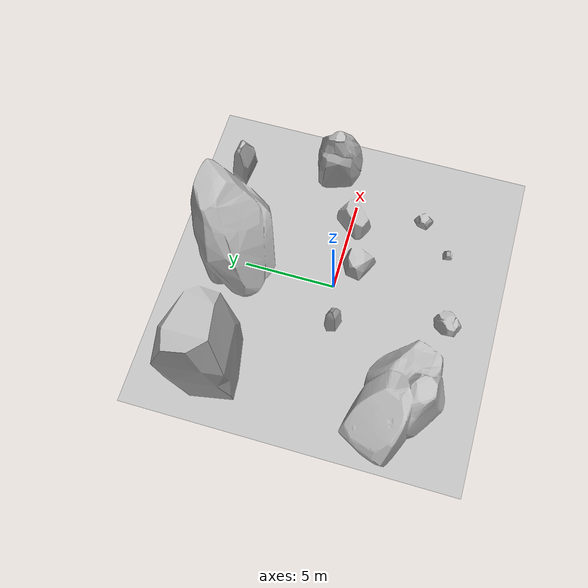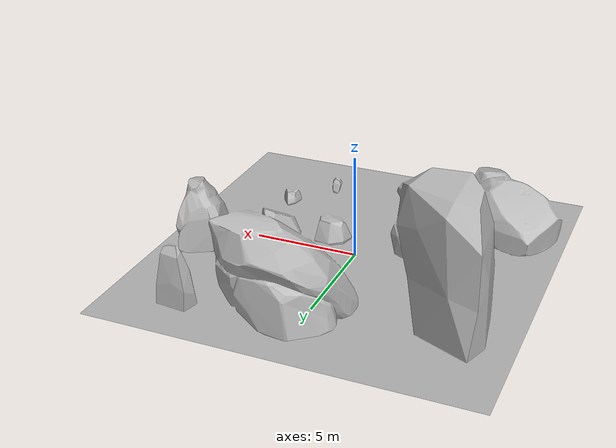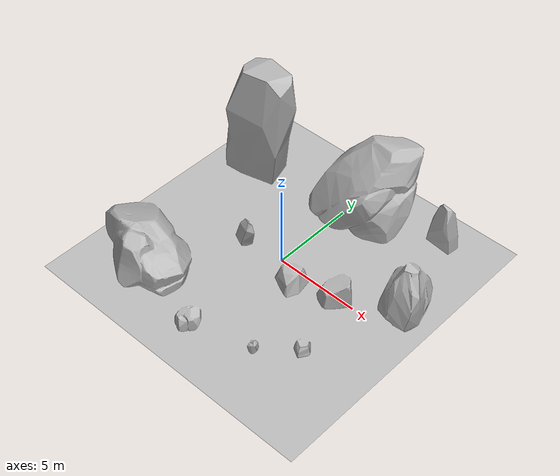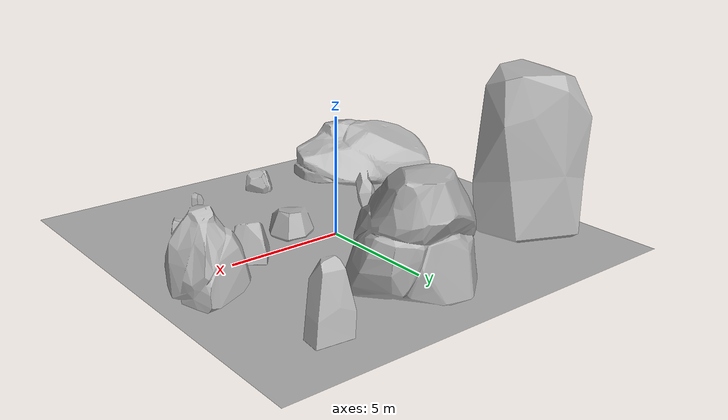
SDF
<?xml version="1.0" ?>
<sdf version="1.6">
  <model name="map_rock">
    <static>true</static>
    <link name="link">
      <visual name="visual">
        <geometry>
          <mesh>
            <uri>model://map_rock/meshes/map_rock.dae</uri>
          </mesh>
        </geometry>
      </visual>
      <collision name="collision">
        <geometry>
          <mesh>
            <uri>model://map_rock/meshes/map_rock.dae</uri>
          </mesh>
        </geometry>
      </collision>
    </link>
  </model>
</sdf>
